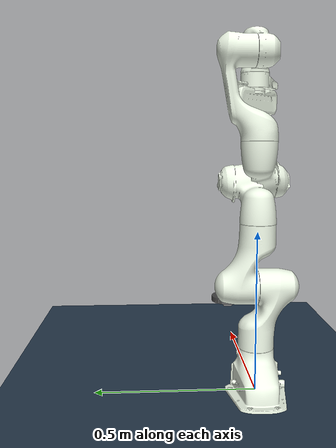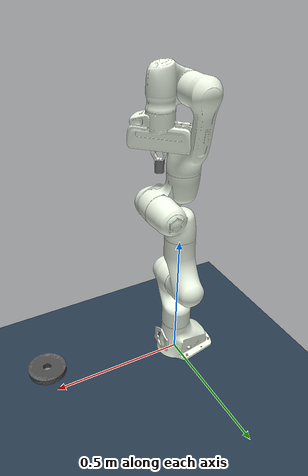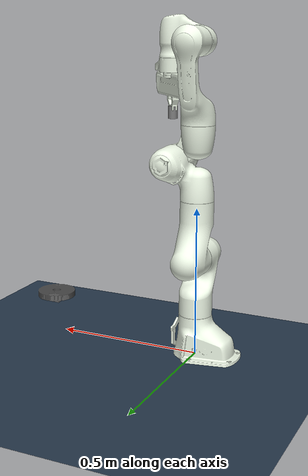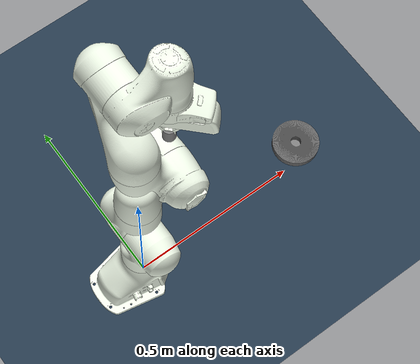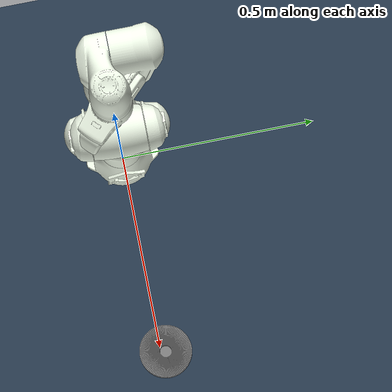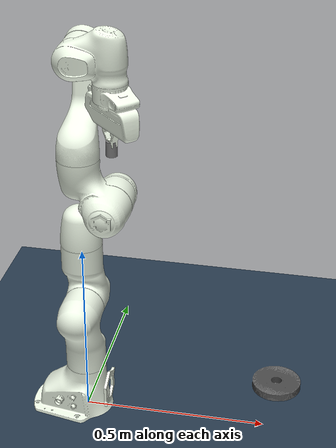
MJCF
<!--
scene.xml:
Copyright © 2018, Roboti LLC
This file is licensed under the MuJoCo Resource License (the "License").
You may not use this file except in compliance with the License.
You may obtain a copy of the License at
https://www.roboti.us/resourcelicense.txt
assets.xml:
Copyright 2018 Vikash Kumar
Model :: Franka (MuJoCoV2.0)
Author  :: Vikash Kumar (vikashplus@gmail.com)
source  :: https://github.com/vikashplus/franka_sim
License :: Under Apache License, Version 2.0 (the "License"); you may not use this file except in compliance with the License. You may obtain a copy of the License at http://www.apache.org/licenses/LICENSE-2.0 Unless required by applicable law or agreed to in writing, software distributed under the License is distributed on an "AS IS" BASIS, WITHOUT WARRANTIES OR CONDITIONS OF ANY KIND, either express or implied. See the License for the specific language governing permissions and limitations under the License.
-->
<mujoco>
  <!-- mujoco solver parameters and setup -->
  <include file="scene.xml"/>

  <!-- set to default values at the moment -->
  <default class="contact">
    <default class="hole">
      <geom type="box" mass="0.0099" size="0.02500 0.00047 0.01000"/>
    </default>

    <default class="peg">
      <!-- size = (radius, half-heihgt) -->
      <geom type="cylinder" mass="0.5" size="0.0149 0.02" euler="0 0 0"
                priority="1" condim="6" friction="0.8 0.05 0.001"
                solimp="0.9 0.95 0.001 0.5 2" solref="0.02 1."/>
    </default>
  </default>

  <!-- triangular prism mesh -->
  <asset>
    <mesh name="prism" vertex="0.0150 0.00047 0.0200  0.0150 0.00047 0.0400  0.06500 0.00047 0.02000  0.06500 0.00047 0.04000  0.06490 0.00361 0.02000  0.06490 0.00361 0.04000"/>
  </asset>

  <!-- panda robot -->
  <include file="../franka_sim/assets/assets.xml"/>

  <worldbody>
      <include file="chain_peg.xml"/>
  </worldbody>

  <include file='../franka_sim/assets/force_actuator.xml'/>

  <!-- default class to adjust the paramters of peg -->
  <worldbody>
    <body name="hole" pos="0.53 0.012 0.1088">
      <geom name="base" type="box" mass="0.00990" pos="0 0 0.01" size="0.01747 0.01747 0.01"/>
      <geom name="hole1" class="hole" pos="0.04000 0.00000 0.03000" euler="0 0 0.000"/>
      <geom name="prism1" type="mesh" mesh="prism"/>
      <geom name="hole2" class="hole" pos="0.03992 0.00251 0.03000" euler="0 0 0.063"/>
      <geom name="prism2" type="mesh" mesh="prism" euler="0 0 0.06283"/>
      <geom name="hole3" class="hole" pos="0.03968 0.00501 0.03000" euler="0 0 0.126"/>
      <geom name="prism3" type="mesh" mesh="prism" euler="0 0 0.12566"/>
      <geom name="hole4" class="hole" pos="0.03929 0.00750 0.03000" euler="0 0 0.188"/>
      <geom name="prism4" type="mesh" mesh="prism" euler="0 0 0.18850"/>
      <geom name="hole5" class="hole" pos="0.03874 0.00995 0.03000" euler="0 0 0.251"/>
      <geom name="prism5" type="mesh" mesh="prism" euler="0 0 0.25133"/>
      <geom name="hole6" class="hole" pos="0.03804 0.01236 0.03000" euler="0 0 0.314"/>
      <geom name="prism6" type="mesh" mesh="prism" euler="0 0 0.31416"/>
      <geom name="hole7" class="hole" pos="0.03719 0.01472 0.03000" euler="0 0 0.377"/>
      <geom name="prism7" type="mesh" mesh="prism" euler="0 0 0.37699"/>
      <geom name="hole8" class="hole" pos="0.03619 0.01703 0.03000" euler="0 0 0.440"/>
      <geom name="prism8" type="mesh" mesh="prism" euler="0 0 0.43982"/>
      <geom name="hole9" class="hole" pos="0.03505 0.01927 0.03000" euler="0 0 0.503"/>
      <geom name="prism9" type="mesh" mesh="prism" euler="0 0 0.50265"/>
      <geom name="hole10" class="hole" pos="0.03377 0.02143 0.03000" euler="0 0 0.565"/>
      <geom name="prism10" type="mesh" mesh="prism" euler="0 0 0.56549"/>
      <geom name="hole11" class="hole" pos="0.03236 0.02351 0.03000" euler="0 0 0.628"/>
      <geom name="prism11" type="mesh" mesh="prism" euler="0 0 0.62832"/>
      <geom name="hole12" class="hole" pos="0.03082 0.02550 0.03000" euler="0 0 0.691"/>
      <geom name="prism12" type="mesh" mesh="prism" euler="0 0 0.69115"/>
      <geom name="hole13" class="hole" pos="0.02916 0.02738 0.03000" euler="0 0 0.754"/>
      <geom name="prism13" type="mesh" mesh="prism" euler="0 0 0.75398"/>
      <geom name="hole14" class="hole" pos="0.02738 0.02916 0.03000" euler="0 0 0.817"/>
      <geom name="prism14" type="mesh" mesh="prism" euler="0 0 0.81681"/>
      <geom name="hole15" class="hole" pos="0.02550 0.03082 0.03000" euler="0 0 0.880"/>
      <geom name="prism15" type="mesh" mesh="prism" euler="0 0 0.87965"/>
      <geom name="hole16" class="hole" pos="0.02351 0.03236 0.03000" euler="0 0 0.942"/>
      <geom name="prism16" type="mesh" mesh="prism" euler="0 0 0.94248"/>
      <geom name="hole17" class="hole" pos="0.02143 0.03377 0.03000" euler="0 0 1.005"/>
      <geom name="prism17" type="mesh" mesh="prism" euler="0 0 1.00531"/>
      <geom name="hole18" class="hole" pos="0.01927 0.03505 0.03000" euler="0 0 1.068"/>
      <geom name="prism18" type="mesh" mesh="prism" euler="0 0 1.06814"/>
      <geom name="hole19" class="hole" pos="0.01703 0.03619 0.03000" euler="0 0 1.131"/>
      <geom name="prism19" type="mesh" mesh="prism" euler="0 0 1.13097"/>
      <geom name="hole20" class="hole" pos="0.01472 0.03719 0.03000" euler="0 0 1.194"/>
      <geom name="prism20" type="mesh" mesh="prism" euler="0 0 1.19381"/>
      <geom name="hole21" class="hole" pos="0.01236 0.03804 0.03000" euler="0 0 1.257"/>
      <geom name="prism21" type="mesh" mesh="prism" euler="0 0 1.25664"/>
      <geom name="hole22" class="hole" pos="0.00995 0.03874 0.03000" euler="0 0 1.319"/>
      <geom name="prism22" type="mesh" mesh="prism" euler="0 0 1.31947"/>
      <geom name="hole23" class="hole" pos="0.00750 0.03929 0.03000" euler="0 0 1.382"/>
      <geom name="prism23" type="mesh" mesh="prism" euler="0 0 1.38230"/>
      <geom name="hole24" class="hole" pos="0.00501 0.03968 0.03000" euler="0 0 1.445"/>
      <geom name="prism24" type="mesh" mesh="prism" euler="0 0 1.44513"/>
      <geom name="hole25" class="hole" pos="0.00251 0.03992 0.03000" euler="0 0 1.508"/>
      <geom name="prism25" type="mesh" mesh="prism" euler="0 0 1.50796"/>
      <geom name="hole26" class="hole" pos="-0.00000 0.04000 0.03000" euler="0 0 1.571"/>
      <geom name="prism26" type="mesh" mesh="prism" euler="0 0 1.57080"/>
      <geom name="hole27" class="hole" pos="-0.00251 0.03992 0.03000" euler="0 0 1.634"/>
      <geom name="prism27" type="mesh" mesh="prism" euler="0 0 1.63363"/>
      <geom name="hole28" class="hole" pos="-0.00501 0.03968 0.03000" euler="0 0 1.696"/>
      <geom name="prism28" type="mesh" mesh="prism" euler="0 0 1.69646"/>
      <geom name="hole29" class="hole" pos="-0.00750 0.03929 0.03000" euler="0 0 1.759"/>
      <geom name="prism29" type="mesh" mesh="prism" euler="0 0 1.75929"/>
      <geom name="hole30" class="hole" pos="-0.00995 0.03874 0.03000" euler="0 0 1.822"/>
      <geom name="prism30" type="mesh" mesh="prism" euler="0 0 1.82212"/>
      <geom name="hole31" class="hole" pos="-0.01236 0.03804 0.03000" euler="0 0 1.885"/>
      <geom name="prism31" type="mesh" mesh="prism" euler="0 0 1.88496"/>
      <geom name="hole32" class="hole" pos="-0.01472 0.03719 0.03000" euler="0 0 1.948"/>
      <geom name="prism32" type="mesh" mesh="prism" euler="0 0 1.94779"/>
      <geom name="hole33" class="hole" pos="-0.01703 0.03619 0.03000" euler="0 0 2.011"/>
      <geom name="prism33" type="mesh" mesh="prism" euler="0 0 2.01062"/>
      <geom name="hole34" class="hole" pos="-0.01927 0.03505 0.03000" euler="0 0 2.073"/>
      <geom name="prism34" type="mesh" mesh="prism" euler="0 0 2.07345"/>
      <geom name="hole35" class="hole" pos="-0.02143 0.03377 0.03000" euler="0 0 2.136"/>
      <geom name="prism35" type="mesh" mesh="prism" euler="0 0 2.13628"/>
      <geom name="hole36" class="hole" pos="-0.02351 0.03236 0.03000" euler="0 0 2.199"/>
      <geom name="prism36" type="mesh" mesh="prism" euler="0 0 2.19911"/>
      <geom name="hole37" class="hole" pos="-0.02550 0.03082 0.03000" euler="0 0 2.262"/>
      <geom name="prism37" type="mesh" mesh="prism" euler="0 0 2.26195"/>
      <geom name="hole38" class="hole" pos="-0.02738 0.02916 0.03000" euler="0 0 2.325"/>
      <geom name="prism38" type="mesh" mesh="prism" euler="0 0 2.32478"/>
      <geom name="hole39" class="hole" pos="-0.02916 0.02738 0.03000" euler="0 0 2.388"/>
      <geom name="prism39" type="mesh" mesh="prism" euler="0 0 2.38761"/>
      <geom name="hole40" class="hole" pos="-0.03082 0.02550 0.03000" euler="0 0 2.450"/>
      <geom name="prism40" type="mesh" mesh="prism" euler="0 0 2.45044"/>
      <geom name="hole41" class="hole" pos="-0.03236 0.02351 0.03000" euler="0 0 2.513"/>
      <geom name="prism41" type="mesh" mesh="prism" euler="0 0 2.51327"/>
      <geom name="hole42" class="hole" pos="-0.03377 0.02143 0.03000" euler="0 0 2.576"/>
      <geom name="prism42" type="mesh" mesh="prism" euler="0 0 2.57611"/>
      <geom name="hole43" class="hole" pos="-0.03505 0.01927 0.03000" euler="0 0 2.639"/>
      <geom name="prism43" type="mesh" mesh="prism" euler="0 0 2.63894"/>
      <geom name="hole44" class="hole" pos="-0.03619 0.01703 0.03000" euler="0 0 2.702"/>
      <geom name="prism44" type="mesh" mesh="prism" euler="0 0 2.70177"/>
      <geom name="hole45" class="hole" pos="-0.03719 0.01472 0.03000" euler="0 0 2.765"/>
      <geom name="prism45" type="mesh" mesh="prism" euler="0 0 2.76460"/>
      <geom name="hole46" class="hole" pos="-0.03804 0.01236 0.03000" euler="0 0 2.827"/>
      <geom name="prism46" type="mesh" mesh="prism" euler="0 0 2.82743"/>
      <geom name="hole47" class="hole" pos="-0.03874 0.00995 0.03000" euler="0 0 2.890"/>
      <geom name="prism47" type="mesh" mesh="prism" euler="0 0 2.89027"/>
      <geom name="hole48" class="hole" pos="-0.03929 0.00750 0.03000" euler="0 0 2.953"/>
      <geom name="prism48" type="mesh" mesh="prism" euler="0 0 2.95310"/>
      <geom name="hole49" class="hole" pos="-0.03968 0.00501 0.03000" euler="0 0 3.016"/>
      <geom name="prism49" type="mesh" mesh="prism" euler="0 0 3.01593"/>
      <geom name="hole50" class="hole" pos="-0.03992 0.00251 0.03000" euler="0 0 3.079"/>
      <geom name="prism50" type="mesh" mesh="prism" euler="0 0 3.07876"/>
      <geom name="hole51" class="hole" pos="-0.04000 -0.00000 0.03000" euler="0 0 3.142"/>
      <geom name="prism51" type="mesh" mesh="prism" euler="0 0 3.14159"/>
      <geom name="hole52" class="hole" pos="-0.03992 -0.00251 0.03000" euler="0 0 3.204"/>
      <geom name="prism52" type="mesh" mesh="prism" euler="0 0 3.20442"/>
      <geom name="hole53" class="hole" pos="-0.03968 -0.00501 0.03000" euler="0 0 3.267"/>
      <geom name="prism53" type="mesh" mesh="prism" euler="0 0 3.26726"/>
      <geom name="hole54" class="hole" pos="-0.03929 -0.00750 0.03000" euler="0 0 3.330"/>
      <geom name="prism54" type="mesh" mesh="prism" euler="0 0 3.33009"/>
      <geom name="hole55" class="hole" pos="-0.03874 -0.00995 0.03000" euler="0 0 3.393"/>
      <geom name="prism55" type="mesh" mesh="prism" euler="0 0 3.39292"/>
      <geom name="hole56" class="hole" pos="-0.03804 -0.01236 0.03000" euler="0 0 3.456"/>
      <geom name="prism56" type="mesh" mesh="prism" euler="0 0 3.45575"/>
      <geom name="hole57" class="hole" pos="-0.03719 -0.01472 0.03000" euler="0 0 3.519"/>
      <geom name="prism57" type="mesh" mesh="prism" euler="0 0 3.51858"/>
      <geom name="hole58" class="hole" pos="-0.03619 -0.01703 0.03000" euler="0 0 3.581"/>
      <geom name="prism58" type="mesh" mesh="prism" euler="0 0 3.58142"/>
      <geom name="hole59" class="hole" pos="-0.03505 -0.01927 0.03000" euler="0 0 3.644"/>
      <geom name="prism59" type="mesh" mesh="prism" euler="0 0 3.64425"/>
      <geom name="hole60" class="hole" pos="-0.03377 -0.02143 0.03000" euler="0 0 3.707"/>
      <geom name="prism60" type="mesh" mesh="prism" euler="0 0 3.70708"/>
      <geom name="hole61" class="hole" pos="-0.03236 -0.02351 0.03000" euler="0 0 3.770"/>
      <geom name="prism61" type="mesh" mesh="prism" euler="0 0 3.76991"/>
      <geom name="hole62" class="hole" pos="-0.03082 -0.02550 0.03000" euler="0 0 3.833"/>
      <geom name="prism62" type="mesh" mesh="prism" euler="0 0 3.83274"/>
      <geom name="hole63" class="hole" pos="-0.02916 -0.02738 0.03000" euler="0 0 3.896"/>
      <geom name="prism63" type="mesh" mesh="prism" euler="0 0 3.89557"/>
      <geom name="hole64" class="hole" pos="-0.02738 -0.02916 0.03000" euler="0 0 3.958"/>
      <geom name="prism64" type="mesh" mesh="prism" euler="0 0 3.95841"/>
      <geom name="hole65" class="hole" pos="-0.02550 -0.03082 0.03000" euler="0 0 4.021"/>
      <geom name="prism65" type="mesh" mesh="prism" euler="0 0 4.02124"/>
      <geom name="hole66" class="hole" pos="-0.02351 -0.03236 0.03000" euler="0 0 4.084"/>
      <geom name="prism66" type="mesh" mesh="prism" euler="0 0 4.08407"/>
      <geom name="hole67" class="hole" pos="-0.02143 -0.03377 0.03000" euler="0 0 4.147"/>
      <geom name="prism67" type="mesh" mesh="prism" euler="0 0 4.14690"/>
      <geom name="hole68" class="hole" pos="-0.01927 -0.03505 0.03000" euler="0 0 4.210"/>
      <geom name="prism68" type="mesh" mesh="prism" euler="0 0 4.20973"/>
      <geom name="hole69" class="hole" pos="-0.01703 -0.03619 0.03000" euler="0 0 4.273"/>
      <geom name="prism69" type="mesh" mesh="prism" euler="0 0 4.27257"/>
      <geom name="hole70" class="hole" pos="-0.01472 -0.03719 0.03000" euler="0 0 4.335"/>
      <geom name="prism70" type="mesh" mesh="prism" euler="0 0 4.33540"/>
      <geom name="hole71" class="hole" pos="-0.01236 -0.03804 0.03000" euler="0 0 4.398"/>
      <geom name="prism71" type="mesh" mesh="prism" euler="0 0 4.39823"/>
      <geom name="hole72" class="hole" pos="-0.00995 -0.03874 0.03000" euler="0 0 4.461"/>
      <geom name="prism72" type="mesh" mesh="prism" euler="0 0 4.46106"/>
      <geom name="hole73" class="hole" pos="-0.00750 -0.03929 0.03000" euler="0 0 4.524"/>
      <geom name="prism73" type="mesh" mesh="prism" euler="0 0 4.52389"/>
      <geom name="hole74" class="hole" pos="-0.00501 -0.03968 0.03000" euler="0 0 4.587"/>
      <geom name="prism74" type="mesh" mesh="prism" euler="0 0 4.58673"/>
      <geom name="hole75" class="hole" pos="-0.00251 -0.03992 0.03000" euler="0 0 4.650"/>
      <geom name="prism75" type="mesh" mesh="prism" euler="0 0 4.64956"/>
      <geom name="hole76" class="hole" pos="-0.00000 -0.04000 0.03000" euler="0 0 4.712"/>
      <geom name="prism76" type="mesh" mesh="prism" euler="0 0 4.71239"/>
      <geom name="hole77" class="hole" pos="0.00251 -0.03992 0.03000" euler="0 0 4.775"/>
      <geom name="prism77" type="mesh" mesh="prism" euler="0 0 4.77522"/>
      <geom name="hole78" class="hole" pos="0.00501 -0.03968 0.03000" euler="0 0 4.838"/>
      <geom name="prism78" type="mesh" mesh="prism" euler="0 0 4.83805"/>
      <geom name="hole79" class="hole" pos="0.00750 -0.03929 0.03000" euler="0 0 4.901"/>
      <geom name="prism79" type="mesh" mesh="prism" euler="0 0 4.90088"/>
      <geom name="hole80" class="hole" pos="0.00995 -0.03874 0.03000" euler="0 0 4.964"/>
      <geom name="prism80" type="mesh" mesh="prism" euler="0 0 4.96372"/>
      <geom name="hole81" class="hole" pos="0.01236 -0.03804 0.03000" euler="0 0 5.027"/>
      <geom name="prism81" type="mesh" mesh="prism" euler="0 0 5.02655"/>
      <geom name="hole82" class="hole" pos="0.01472 -0.03719 0.03000" euler="0 0 5.089"/>
      <geom name="prism82" type="mesh" mesh="prism" euler="0 0 5.08938"/>
      <geom name="hole83" class="hole" pos="0.01703 -0.03619 0.03000" euler="0 0 5.152"/>
      <geom name="prism83" type="mesh" mesh="prism" euler="0 0 5.15221"/>
      <geom name="hole84" class="hole" pos="0.01927 -0.03505 0.03000" euler="0 0 5.215"/>
      <geom name="prism84" type="mesh" mesh="prism" euler="0 0 5.21504"/>
      <geom name="hole85" class="hole" pos="0.02143 -0.03377 0.03000" euler="0 0 5.278"/>
      <geom name="prism85" type="mesh" mesh="prism" euler="0 0 5.27788"/>
      <geom name="hole86" class="hole" pos="0.02351 -0.03236 0.03000" euler="0 0 5.341"/>
      <geom name="prism86" type="mesh" mesh="prism" euler="0 0 5.34071"/>
      <geom name="hole87" class="hole" pos="0.02550 -0.03082 0.03000" euler="0 0 5.404"/>
      <geom name="prism87" type="mesh" mesh="prism" euler="0 0 5.40354"/>
      <geom name="hole88" class="hole" pos="0.02738 -0.02916 0.03000" euler="0 0 5.466"/>
      <geom name="prism88" type="mesh" mesh="prism" euler="0 0 5.46637"/>
      <geom name="hole89" class="hole" pos="0.02916 -0.02738 0.03000" euler="0 0 5.529"/>
      <geom name="prism89" type="mesh" mesh="prism" euler="0 0 5.52920"/>
      <geom name="hole90" class="hole" pos="0.03082 -0.02550 0.03000" euler="0 0 5.592"/>
      <geom name="prism90" type="mesh" mesh="prism" euler="0 0 5.59203"/>
      <geom name="hole91" class="hole" pos="0.03236 -0.02351 0.03000" euler="0 0 5.655"/>
      <geom name="prism91" type="mesh" mesh="prism" euler="0 0 5.65487"/>
      <geom name="hole92" class="hole" pos="0.03377 -0.02143 0.03000" euler="0 0 5.718"/>
      <geom name="prism92" type="mesh" mesh="prism" euler="0 0 5.71770"/>
      <geom name="hole93" class="hole" pos="0.03505 -0.01927 0.03000" euler="0 0 5.781"/>
      <geom name="prism93" type="mesh" mesh="prism" euler="0 0 5.78053"/>
      <geom name="hole94" class="hole" pos="0.03619 -0.01703 0.03000" euler="0 0 5.843"/>
      <geom name="prism94" type="mesh" mesh="prism" euler="0 0 5.84336"/>
      <geom name="hole95" class="hole" pos="0.03719 -0.01472 0.03000" euler="0 0 5.906"/>
      <geom name="prism95" type="mesh" mesh="prism" euler="0 0 5.90619"/>
      <geom name="hole96" class="hole" pos="0.03804 -0.01236 0.03000" euler="0 0 5.969"/>
      <geom name="prism96" type="mesh" mesh="prism" euler="0 0 5.96903"/>
      <geom name="hole97" class="hole" pos="0.03874 -0.00995 0.03000" euler="0 0 6.032"/>
      <geom name="prism97" type="mesh" mesh="prism" euler="0 0 6.03186"/>
      <geom name="hole98" class="hole" pos="0.03929 -0.00750 0.03000" euler="0 0 6.095"/>
      <geom name="prism98" type="mesh" mesh="prism" euler="0 0 6.09469"/>
      <geom name="hole99" class="hole" pos="0.03968 -0.00501 0.03000" euler="0 0 6.158"/>
      <geom name="prism99" type="mesh" mesh="prism" euler="0 0 6.15752"/>
      <geom name="hole100" class="hole" pos="0.03992 -0.00251 0.03000" euler="0 0 6.220"/>
      <geom name="prism100" type="mesh" mesh="prism" euler="0 0 6.22035"/>
    </body>
  </worldbody>

</mujoco>

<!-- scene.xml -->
<mujoco>
    <statistic extent="2" meansize=".05"/>
    <compiler angle="radian" coordinate="local" eulerseq="XYZ"/>
    <size njmax="5000" nconmax="250"/>
    <option timestep="0.002" solver="Newton" iterations="30" tolerance="1e-10" jacobian="sparse" cone="elliptic"/>
    <size nuser_actuator="5"/>

    <visual>
        <rgba haze="0.15 0.25 0.35 1"/>
        <quality shadowsize="2048"/>
        <map stiffness="700" shadowscale="0.5" fogstart="10" fogend="15" zfar="40" haze="0.3"/>
    </visual>

    <asset>
        <texture type="skybox" builtin="gradient" rgb1="0.3 0.5 0.7" rgb2="0 0 0" width="512" height="512"/>
        <texture name="texplane" type="2d" builtin="checker" rgb1=".2 .3 .4" rgb2=".1 0.15 0.2"
            width="512" height="512" mark="cross" markrgb=".8 .8 .8"/>

        <material name="matplane" reflectance="0.3" texture="texplane" texrepeat="1 1" texuniform="true"/>
    </asset>

    <worldbody>
        <camera mode="track" pos="1 0 1" quat="0.5 .5 .5 .5" />
        <light directional="true" diffuse=".4 .4 .4" specular="0.1 0.1 0.1" pos="0 0 5.0" dir="0 0 -1" castshadow="false"/>
        <light directional="true" diffuse=".6 .6 .6" specular="0.2 0.2 0.2" pos="0 0 4" dir="0 0 -1"/>

        <geom name="ground" type="plane" size="0 0 1" pos="0 0 0" quat="1 0 0 0" material="matplane" condim="1"/>
    </worldbody>
</mujoco>

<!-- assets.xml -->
<mujocoinclude>

    <asset>
        <mesh name="link0_col" file="../franka_sim/meshes/collision/link0.stl"/>
        <mesh name="link1_col" file="../franka_sim/meshes/collision/link1.stl"/>
        <mesh name="link2_col" file="../franka_sim/meshes/collision/link2.stl"/>
        <mesh name="link3_col" file="../franka_sim/meshes/collision/link3.stl"/>
        <mesh name="link4_col" file="../franka_sim/meshes/collision/link4.stl"/>
        <mesh name="link5_col" file="../franka_sim/meshes/collision/link5.stl"/>
        <mesh name="link6_col" file="../franka_sim/meshes/collision/link6.stl"/>
        <mesh name="link7_col" file="../franka_sim/meshes/collision/link7.stl"/>
        <mesh name="hand_col" file="../franka_sim/meshes/collision/hand.stl"/>
        <mesh name="finger_col" file="../franka_sim/meshes/collision/finger.stl" scale='1.0 1.0 1.0'/>
        <mesh name="link0_viz" file="../franka_sim/meshes/visual/link0.stl"/>
        <mesh name="link1_viz" file="../franka_sim/meshes/visual/link1.stl"/>
        <mesh name="link2_viz" file="../franka_sim/meshes/visual/link2.stl"/>
        <mesh name="link3_viz" file="../franka_sim/meshes/visual/link3.stl"/>
        <mesh name="link4_viz" file="../franka_sim/meshes/visual/link4.stl"/>
        <mesh name="link5_viz" file="../franka_sim/meshes/visual/link5.stl"/>
        <mesh name="link6_viz" file="../franka_sim/meshes/visual/link6.stl"/>
        <mesh name="link7_viz" file="../franka_sim/meshes/visual/link7.stl"/>
        <mesh name="hand_viz" file="../franka_sim/meshes/visual/hand.stl"/>
        <mesh name="finger_viz" file="../franka_sim/meshes/visual/finger.stl" scale='1.0 1.0 1.0'/>
    </asset>

    <default>
        <default class="panda">
            <joint pos="0 0 0" axis="0 0 1" limited="true"/>
            <position forcelimited="true" ctrllimited="true" user="1002 40 2001 -0.005 0.005"/>
            <default class="panda_viz">
                <geom contype="0" conaffinity="0" group="0" type="mesh" rgba=".95 .99 .92 1" mass="0"/>
            </default>

            <default class="panda_col">
                <geom contype="1" conaffinity="1" group="3" type="mesh" rgba=".5 .6 .7 1"/>
            </default>
            <default class="panda_arm">
                <joint damping="10.0"/>
            </default>
             <default class="panda_forearm">
                <joint damping="10.0"/>
            </default>
             <default class="panda_finger">
                <joint damping="100" armature='5'/>
                <geom friction="1 0.5 0.0001" solref="0.01 1" solimp="0.8 0.9 0.001" margin="0.001" user="0" rgba="0.5 0.6 0.7 .4" contype="1" conaffinity="0" condim="6" group="3" />
                <position user="1002 40 2001 -0.0001 0.0001"/>
            </default>
        </default>

        <default class="panda_overlay">
            <joint limited="false" damping="1000" armature="1" frictionloss="10"/>
            <geom contype="0" conaffinity="0" group="2" type="mesh" rgba=".42 0.42 0.42 .5"/>
        </default>
    </default>
</mujocoinclude>

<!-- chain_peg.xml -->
<mujocoinclude>

<!-- Robot limits pulled from https://frankaemika.github.io/docs/control_parameters.html#constants -->
    <body name="panda0_link0" childclass="panda" >
        <geom class="panda_viz" mesh="link0_viz"/>
        <geom class="panda_col" mesh="link0_col" mass="2.91242"/>
        <body name="panda0_link1" pos="0 0 0.333">
            <joint name="panda0_joint1" range="-2.8973 2.8973" class="panda_arm"/>
            <geom class="panda_viz" mesh="link1_viz"/>
            <geom class="panda_col" mesh="link1_col" mass="2.7063"/>
            <body name="panda0_link2" pos="0 0 0" quat="0.707107 -0.707107 0 0">
                <joint name="panda0_joint2" range="-1.7628 1.7628" class="panda_arm"/>
                <geom class="panda_viz" mesh="link2_viz"/>
                <geom class="panda_col" mesh="link2_col" mass="2.73046"/>
                <body name="panda0_link3" pos="0 -0.316 0" quat="0.707107 0.707107 0 0">
                    <joint name="panda0_joint3" range="-2.8973 2.8973" class="panda_arm"/>
                    <geom class="panda_viz" mesh="link3_viz"/>
                    <geom class="panda_col" mesh="link3_col" mass="2.04104"/>
                    <body name="panda0_link4" pos="0.0825 0 0" quat="0.707107 0.707107 0 0">
                        <joint name="panda0_joint4" range="-3.0718 -0.4" class="panda_arm"/>
                        <geom class="panda_viz" mesh="link4_viz"/>
                        <geom class="panda_col" mesh="link4_col" mass="2.08129"/>
                        <body name="panda0_link5" pos="-0.0825 0.384 0" quat="0.707107 -0.707107 0 0">
                            <joint name="panda0_joint5" range="-2.8973 2.8973" class="panda_forearm"/>
                            <geom class="panda_viz" mesh="link5_viz"/>
                            <geom class="panda_col" mesh="link5_col" mass="3.00049"/>
                            <body name="panda0_link6" pos="0 0 0" quat="0.707107 0.707107 0 0">
                                <joint name="panda0_joint6" range="-0.0873 3.8223" class="panda_forearm"/>
                                <geom class="panda_viz" mesh="link6_viz"/>
                                <geom class="panda_col" mesh="link6_col" mass="1.3235"/>
                                <body name="panda0_link7" pos="0.088 0 0" euler='1.57 0 0'>
                                    <joint name="panda0_joint7" range="-2.8973 2.8973" class="panda_forearm"/>
                                    <geom class="panda_viz" mesh="link7_viz"/>
                                    <geom class="panda_col" mesh="link7_col" mass="0.2"/>
                                    <geom pos="0 0 0.107" quat="0.92388 0 0 -0.382683" class="panda_viz" mesh="hand_viz"/>
                                    <geom pos="0 0 0.107" quat="0.92388 0 0 -0.382683" class="panda_col" mesh="hand_col" mass="0.81909"/>
                                    <!-- change default position to fit the peg-->
                                    <body name="panda0_leftfinger" pos="0.0 0.0 0.1654" quat="0.92388 0 0 -0.382683" childclass='panda_finger'>
                                        <inertial pos="-1.57863e-05 0.0118731 0.0434103" quat="0.705868 0.0310348 -0.0314925 0.706962" mass="0.0927059" diaginertia="6.57134e-05 6.09611e-05 1.09932e-05" />
                                        <joint name="panda0_finger_joint1"  axis="0 1 0" type="slide" range="0 0.04" class="panda_finger"/>
                                        <geom class="panda_viz" mesh="finger_viz"/>
                                        <geom class="panda_col" mesh="finger_col"/>

                                    </body>
                                    <!-- change default position to fit the peg-->
                                    <body name="panda0_rightfinger" pos="0 0 0.1654" quat="0.92388 0 0 -0.382683"  childclass='panda_finger'>
                                        <inertial pos="1.57863e-05 -0.0118731 0.0434103" quat="0.705868 -0.0310348 0.0314925 0.706962" mass="0.0927059" diaginertia="6.57134e-05 6.09611e-05 1.09932e-05" />
                                        <joint name="panda0_finger_joint2" axis="0 -1 0" type="slide" range="0 0.04" class="panda_finger"/>
                                        <geom quat="0 0 0 1" class="panda_viz" mesh="finger_viz"/>
                                        <geom class="panda_col" mesh="finger_col"/>
                                    </body>
                                    <body name="peg" pos="0 0 0.225" euler="0 0 -0.78539">
                                      <geom name="peg" class="peg"/>
                                      <site name='end_effector' pos='0 0 0.02' size='0.002'/>
                                    </body>
                                </body>
                            </body>
                        </body>
                    </body>
                </body>
            </body>
        </body>
    </body>
</mujocoinclude>

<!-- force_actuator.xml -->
<mujocoinclude>

    <actuator>
        <motor name="panda0_joint1" joint="panda0_joint1" class="panda" ctrllimited="false" forcelimited="true" forcerange="-87 87" ctrlrange="-2.9671 2.9671"/> <!-- velocity="2.1750" -->
        <motor name="panda0_joint2" joint="panda0_joint2" class="panda" ctrllimited="false" forcelimited="true" forcerange="-87 87" ctrlrange="-1.8326 1.8326"/> <!-- velocity="2.1750" -->
        <motor name="panda0_joint3" joint="panda0_joint3" class="panda" ctrllimited="false" forcelimited="true" forcerange="-87 87" ctrlrange="-2.9671 2.9671"/> <!-- velocity="2.1750" -->
        <motor name="panda0_joint4" joint="panda0_joint4" class="panda" ctrllimited="false" forcelimited="true" forcerange="-87 87" ctrlrange="-3.1416 0.0"/> <!-- velocity="2.1750" -->
        <motor name="panda0_joint5" joint="panda0_joint5" class="panda" ctrllimited="false" forcelimited="true" forcerange="-12 12" ctrlrange="-2.9671 2.9671"/> <!-- velocity="2.6100" -->
        <motor name="panda0_joint6" joint="panda0_joint6" class="panda" ctrllimited="false" forcelimited="true" forcerange="-12 12" ctrlrange="-3.7525 2.1817"/> <!-- velocity="2.6100" -->
        <motor name="panda0_joint7" joint="panda0_joint7" class="panda" ctrllimited="false" forcelimited="true" forcerange="-12 12" ctrlrange="-2.9671 2.9671"/> <!-- velocity="2.9671" -->
        <motor name="r_gripper_finger_joint" joint="panda0_finger_joint1" class="panda_finger" forcerange="-70 70" ctrlrange="0 0.04"/> <!-- velocity=".2" -->
        <motor name="l_gripper_finger_joint" joint="panda0_finger_joint2" class="panda_finger" forcerange="-70 70" ctrlrange="0 0.04"/> <!-- velocity=".2" -->
    </actuator>
</mujocoinclude>
